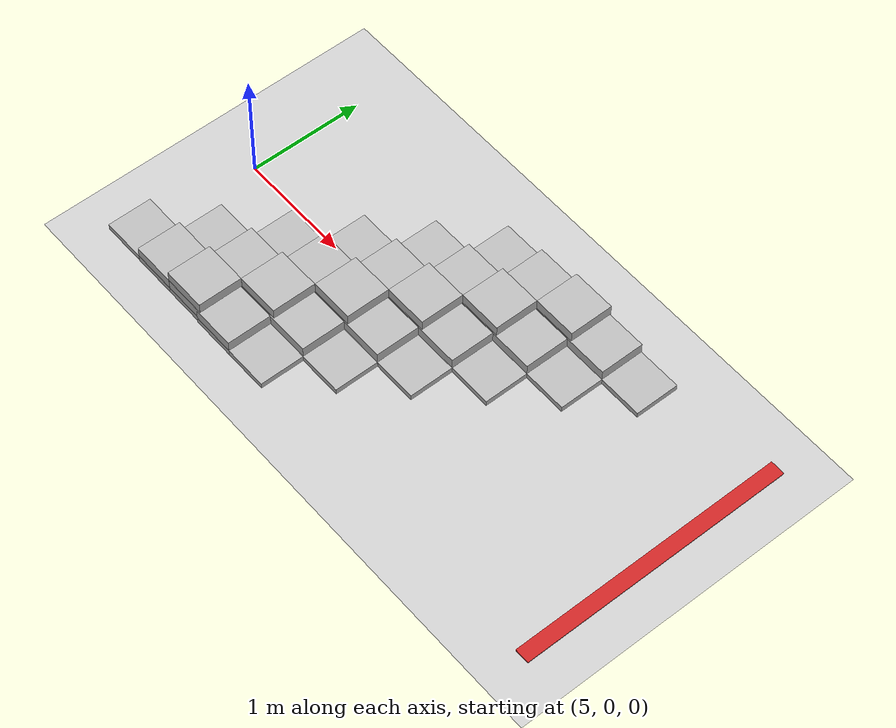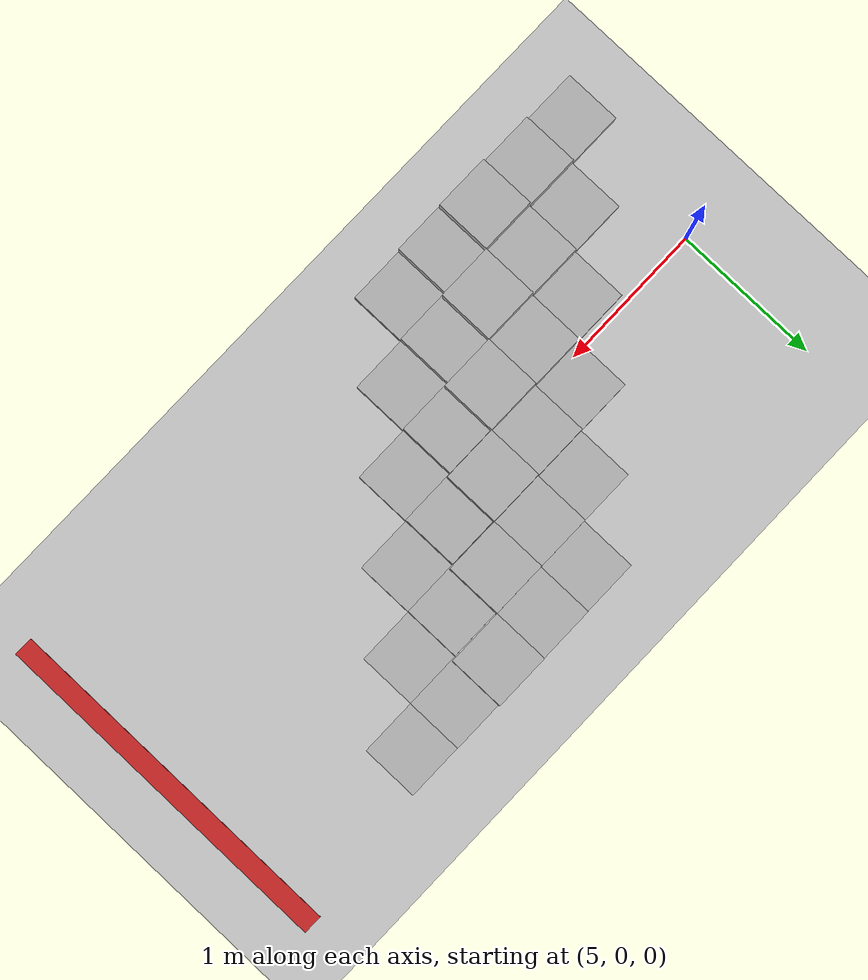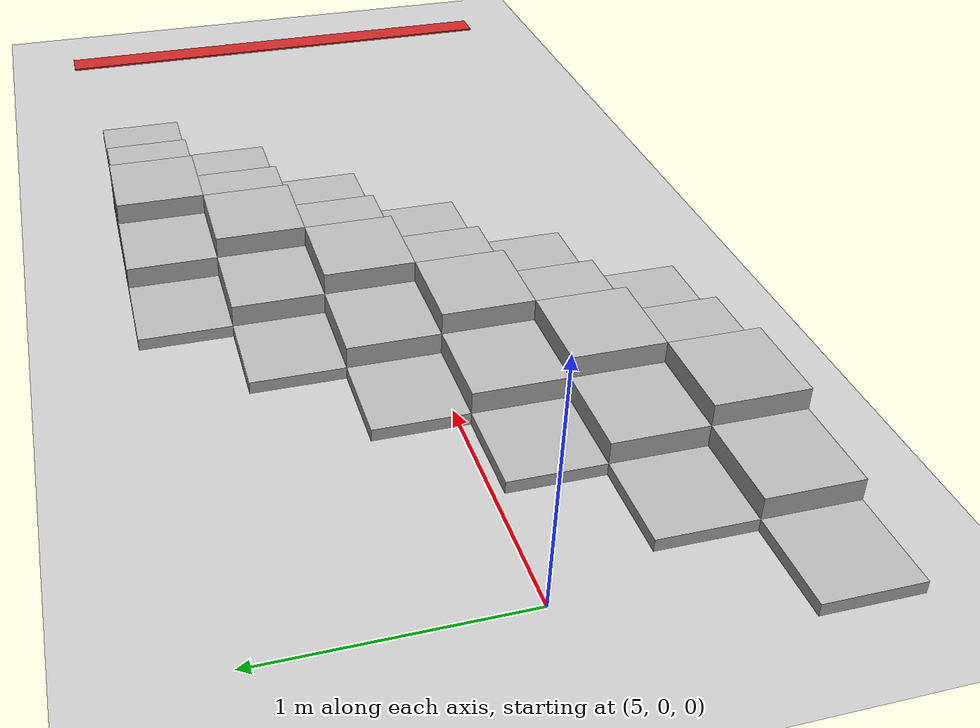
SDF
<sdf version="1.5">
 <world name="trials_task_2">
  <model name="ground_plane">
   <static>1</static>
   <link name="link">
    <collision name="collision">
     <geometry><plane><normal>0 0 1</normal><size>100 100</size></plane></geometry>
     <surface><friction><ode><mu>100</mu><mu2>50</mu2></ode></friction></surface>
    </collision>
    <visual name="visual">
     <cast_shadows>0</cast_shadows>
     <geometry><plane><normal>0 0 1</normal><size>100 100</size></plane></geometry>
     <material>
      <script><uri>file://media/materials/scripts/gazebo.material</uri><name>Gazebo/Grey</name></script>
     </material>
    </visual>
    <velocity_decay><linear>0</linear><angular>0</angular></velocity_decay>
   </link>
  </model>
  <model name="level_block_3">
   <pose>4.9471 -1.012 0 0 -0 0</pose>
   <link name="block_0_0_0::link">
    <inertial>
     <pose>0 0 0.0714375 0 -0 0</pose>
     <mass>5</mass>
     <inertia>
      <ixx>0.0681466</ixx>
      <ixy>0</ixy>
      <iyy>0.0681466</iyy>
      <ixz>0</ixz>
      <iyz>0</iyz>
      <izz>0.124808</izz>
     </inertia>
    </inertial>
    <visual name="visual"><geometry><box><size>0.387354 0.387354 0.092075</size></box></geometry></visual>
    <collision name="block_collision">
     <geometry><box><size>0.387354 0.387354 0.092075</size></box></geometry>
     <surface>
      <contact><ode><max_vel>0.1</max_vel><min_depth>0.001</min_depth></ode></contact>
      <friction><ode><mu>1</mu><mu2>1</mu2></ode></friction>
     </surface>
    </collision>
    <velocity_decay><linear>0</linear><angular>0</angular></velocity_decay>
    <pose>0 0 0 0 -0 1.5708</pose>
   </link>
   <link name="block_0_1_1::link">
    <inertial>
     <pose>0 0 0.0714375 0 -0 0</pose>
     <mass>5</mass>
     <inertia>
      <ixx>0.0681466</ixx>
      <ixy>0</ixy>
      <iyy>0.0681466</iyy>
      <ixz>0</ixz>
      <iyz>0</iyz>
      <izz>0.124808</izz>
     </inertia>
    </inertial>
    <visual name="visual"><geometry><box><size>0.387354 0.387354 0.092075</size></box></geometry></visual>
    <collision name="block_collision">
     <geometry><box><size>0.387354 0.387354 0.092075</size></box></geometry>
     <surface>
      <contact><ode><max_vel>0.1</max_vel><min_depth>0.001</min_depth></ode></contact>
      <friction><ode><mu>1</mu><mu2>1</mu2></ode></friction>
     </surface>
    </collision>
    <velocity_decay><linear>0</linear><angular>0</angular></velocity_decay>
    <pose>0.387354 0 0.093 0 -0 1.5708</pose>
   </link>
   <link name="block_0_1_0::link">
    <inertial>
     <pose>0 0 0.0714375 0 -0 0</pose>
     <mass>5</mass>
     <inertia>
      <ixx>0.0681466</ixx>
      <ixy>0</ixy>
      <iyy>0.0681466</iyy>
      <ixz>0</ixz>
      <iyz>0</iyz>
      <izz>0.124808</izz>
     </inertia>
    </inertial>
    <visual name="visual"><geometry><box><size>0.387354 0.387354 0.092075</size></box></geometry></visual>
    <collision name="block_collision">
     <geometry><box><size>0.387354 0.387354 0.092075</size></box></geometry>
     <surface>
      <contact><ode><max_vel>0.1</max_vel><min_depth>0.001</min_depth></ode></contact>
      <friction><ode><mu>1</mu><mu2>1</mu2></ode></friction>
     </surface>
    </collision>
    <velocity_decay><linear>0</linear><angular>0</angular></velocity_decay>
    <pose>0.387354 0 0 0 -0 1.5708</pose>
   </link>
   <link name="block_0_2_2::link">
    <inertial>
     <pose>0 0 0.0714375 0 -0 0</pose>
     <mass>5</mass>
     <inertia>
      <ixx>0.0681466</ixx>
      <ixy>0</ixy>
      <iyy>0.0681466</iyy>
      <ixz>0</ixz>
      <iyz>0</iyz>
      <izz>0.124808</izz>
     </inertia>
    </inertial>
    <visual name="visual"><geometry><box><size>0.387354 0.387354 0.092075</size></box></geometry></visual>
    <collision name="block_collision">
     <geometry><box><size>0.387354 0.387354 0.092075</size></box></geometry>
     <surface>
      <contact><ode><max_vel>0.1</max_vel><min_depth>0.001</min_depth></ode></contact>
      <friction><ode><mu>1</mu><mu2>1</mu2></ode></friction>
     </surface>
    </collision>
    <velocity_decay><linear>0</linear><angular>0</angular></velocity_decay>
    <pose>0.774707 0 0.186 0 -0 1.5708</pose>
   </link>
   <link name="block_0_2_1::link">
    <inertial>
     <pose>0 0 0.0714375 0 -0 0</pose>
     <mass>5</mass>
     <inertia>
      <ixx>0.0681466</ixx>
      <ixy>0</ixy>
      <iyy>0.0681466</iyy>
      <ixz>0</ixz>
      <iyz>0</iyz>
      <izz>0.124808</izz>
     </inertia>
    </inertial>
    <visual name="visual"><geometry><box><size>0.387354 0.387354 0.092075</size></box></geometry></visual>
    <collision name="block_collision">
     <geometry><box><size>0.387354 0.387354 0.092075</size></box></geometry>
     <surface>
      <contact><ode><max_vel>0.1</max_vel><min_depth>0.001</min_depth></ode></contact>
      <friction><ode><mu>1</mu><mu2>1</mu2></ode></friction>
     </surface>
    </collision>
    <velocity_decay><linear>0</linear><angular>0</angular></velocity_decay>
    <pose>0.774707 0 0.093 0 -0 1.5708</pose>
   </link>
   <link name="block_0_2_0::link">
    <inertial>
     <pose>0 0 0.0714375 0 -0 0</pose>
     <mass>5</mass>
     <inertia>
      <ixx>0.0681466</ixx>
      <ixy>0</ixy>
      <iyy>0.0681466</iyy>
      <ixz>0</ixz>
      <iyz>0</iyz>
      <izz>0.124808</izz>
     </inertia>
    </inertial>
    <visual name="visual"><geometry><box><size>0.387354 0.387354 0.092075</size></box></geometry></visual>
    <collision name="block_collision">
     <geometry><box><size>0.387354 0.387354 0.092075</size></box></geometry>
     <surface>
      <contact><ode><max_vel>0.1</max_vel><min_depth>0.001</min_depth></ode></contact>
      <friction><ode><mu>1</mu><mu2>1</mu2></ode></friction>
     </surface>
    </collision>
    <velocity_decay><linear>0</linear><angular>0</angular></velocity_decay>
    <pose>0.774707 0 0 0 -0 1.5708</pose>
   </link>
   <link name="block_1_0_0::link">
    <inertial>
     <pose>0 0 0.0714375 0 -0 0</pose>
     <mass>5</mass>
     <inertia>
      <ixx>0.0681466</ixx>
      <ixy>0</ixy>
      <iyy>0.0681466</iyy>
      <ixz>0</ixz>
      <iyz>0</iyz>
      <izz>0.124808</izz>
     </inertia>
    </inertial>
    <visual name="visual"><geometry><box><size>0.387354 0.387354 0.092075</size></box></geometry></visual>
    <collision name="block_collision">
     <geometry><box><size>0.387354 0.387354 0.092075</size></box></geometry>
     <surface>
      <contact><ode><max_vel>0.1</max_vel><min_depth>0.001</min_depth></ode></contact>
      <friction><ode><mu>1</mu><mu2>1</mu2></ode></friction>
     </surface>
    </collision>
    <velocity_decay><linear>0</linear><angular>0</angular></velocity_decay>
    <pose>0.387354 0.387354 0 0 -0 1.5708</pose>
   </link>
   <link name="block_1_1_1::link">
    <inertial>
     <pose>0 0 0.0714375 0 -0 0</pose>
     <mass>5</mass>
     <inertia>
      <ixx>0.0681466</ixx>
      <ixy>0</ixy>
      <iyy>0.0681466</iyy>
      <ixz>0</ixz>
      <iyz>0</iyz>
      <izz>0.124808</izz>
     </inertia>
    </inertial>
    <visual name="visual"><geometry><box><size>0.387354 0.387354 0.092075</size></box></geometry></visual>
    <collision name="block_collision">
     <geometry><box><size>0.387354 0.387354 0.092075</size></box></geometry>
     <surface>
      <contact><ode><max_vel>0.1</max_vel><min_depth>0.001</min_depth></ode></contact>
      <friction><ode><mu>1</mu><mu2>1</mu2></ode></friction>
     </surface>
    </collision>
    <velocity_decay><linear>0</linear><angular>0</angular></velocity_decay>
    <pose>0.774707 0.387354 0.093 0 -0 1.5708</pose>
   </link>
   <link name="block_1_1_0::link">
    <inertial>
     <pose>0 0 0.0714375 0 -0 0</pose>
     <mass>5</mass>
     <inertia>
      <ixx>0.0681466</ixx>
      <ixy>0</ixy>
      <iyy>0.0681466</iyy>
      <ixz>0</ixz>
      <iyz>0</iyz>
      <izz>0.124808</izz>
     </inertia>
    </inertial>
    <visual name="visual"><geometry><box><size>0.387354 0.387354 0.092075</size></box></geometry></visual>
    <collision name="block_collision">
     <geometry><box><size>0.387354 0.387354 0.092075</size></box></geometry>
     <surface>
      <contact><ode><max_vel>0.1</max_vel><min_depth>0.001</min_depth></ode></contact>
      <friction><ode><mu>1</mu><mu2>1</mu2></ode></friction>
     </surface>
    </collision>
    <velocity_decay><linear>0</linear><angular>0</angular></velocity_decay>
    <pose>0.774707 0.387354 0 0 -0 1.5708</pose>
   </link>
   <link name="block_1_2_2::link">
    <inertial>
     <pose>0 0 0.0714375 0 -0 0</pose>
     <mass>5</mass>
     <inertia>
      <ixx>0.0681466</ixx>
      <ixy>0</ixy>
      <iyy>0.0681466</iyy>
      <ixz>0</ixz>
      <iyz>0</iyz>
      <izz>0.124808</izz>
     </inertia>
    </inertial>
    <visual name="visual"><geometry><box><size>0.387354 0.387354 0.092075</size></box></geometry></visual>
    <collision name="block_collision">
     <geometry><box><size>0.387354 0.387354 0.092075</size></box></geometry>
     <surface>
      <contact><ode><max_vel>0.1</max_vel><min_depth>0.001</min_depth></ode></contact>
      <friction><ode><mu>1</mu><mu2>1</mu2></ode></friction>
     </surface>
    </collision>
    <velocity_decay><linear>0</linear><angular>0</angular></velocity_decay>
    <pose>1.16206 0.387354 0.186 0 -0 1.5708</pose>
   </link>
   <link name="block_1_2_1::link">
    <inertial>
     <pose>0 0 0.0714375 0 -0 0</pose>
     <mass>5</mass>
     <inertia>
      <ixx>0.0681466</ixx>
      <ixy>0</ixy>
      <iyy>0.0681466</iyy>
      <ixz>0</ixz>
      <iyz>0</iyz>
      <izz>0.124808</izz>
     </inertia>
    </inertial>
    <visual name="visual"><geometry><box><size>0.387354 0.387354 0.092075</size></box></geometry></visual>
    <collision name="block_collision">
     <geometry><box><size>0.387354 0.387354 0.092075</size></box></geometry>
     <surface>
      <contact><ode><max_vel>0.1</max_vel><min_depth>0.001</min_depth></ode></contact>
      <friction><ode><mu>1</mu><mu2>1</mu2></ode></friction>
     </surface>
    </collision>
    <velocity_decay><linear>0</linear><angular>0</angular></velocity_decay>
    <pose>1.16206 0.387354 0.093 0 -0 1.5708</pose>
   </link>
   <link name="block_1_2_0::link">
    <inertial>
     <pose>0 0 0.0714375 0 -0 0</pose>
     <mass>5</mass>
     <inertia>
      <ixx>0.0681466</ixx>
      <ixy>0</ixy>
      <iyy>0.0681466</iyy>
      <ixz>0</ixz>
      <iyz>0</iyz>
      <izz>0.124808</izz>
     </inertia>
    </inertial>
    <visual name="visual"><geometry><box><size>0.387354 0.387354 0.092075</size></box></geometry></visual>
    <collision name="block_collision">
     <geometry><box><size>0.387354 0.387354 0.092075</size></box></geometry>
     <surface>
      <contact><ode><max_vel>0.1</max_vel><min_depth>0.001</min_depth></ode></contact>
      <friction><ode><mu>1</mu><mu2>1</mu2></ode></friction>
     </surface>
    </collision>
    <velocity_decay><linear>0</linear><angular>0</angular></velocity_decay>
    <pose>1.16206 0.387354 0 0 -0 1.5708</pose>
   </link>
   <link name="block_2_0_0::link">
    <inertial>
     <pose>0 0 0.0714375 0 -0 0</pose>
     <mass>5</mass>
     <inertia>
      <ixx>0.0681466</ixx>
      <ixy>0</ixy>
      <iyy>0.0681466</iyy>
      <ixz>0</ixz>
      <iyz>0</iyz>
      <izz>0.124808</izz>
     </inertia>
    </inertial>
    <visual name="visual"><geometry><box><size>0.387354 0.387354 0.092075</size></box></geometry></visual>
    <collision name="block_collision">
     <geometry><box><size>0.387354 0.387354 0.092075</size></box></geometry>
     <surface>
      <contact><ode><max_vel>0.1</max_vel><min_depth>0.001</min_depth></ode></contact>
      <friction><ode><mu>1</mu><mu2>1</mu2></ode></friction>
     </surface>
    </collision>
    <velocity_decay><linear>0</linear><angular>0</angular></velocity_decay>
    <pose>0.774707 0.774707 0 0 -0 1.5708</pose>
   </link>
   <link name="block_2_1_1::link">
    <inertial>
     <pose>0 0 0.0714375 0 -0 0</pose>
     <mass>5</mass>
     <inertia>
      <ixx>0.0681466</ixx>
      <ixy>0</ixy>
      <iyy>0.0681466</iyy>
      <ixz>0</ixz>
      <iyz>0</iyz>
      <izz>0.124808</izz>
     </inertia>
    </inertial>
    <visual name="visual"><geometry><box><size>0.387354 0.387354 0.092075</size></box></geometry></visual>
    <collision name="block_collision">
     <geometry><box><size>0.387354 0.387354 0.092075</size></box></geometry>
     <surface>
      <contact><ode><max_vel>0.1</max_vel><min_depth>0.001</min_depth></ode></contact>
      <friction><ode><mu>1</mu><mu2>1</mu2></ode></friction>
     </surface>
    </collision>
    <velocity_decay><linear>0</linear><angular>0</angular></velocity_decay>
    <pose>1.16206 0.774707 0.093 0 -0 1.5708</pose>
   </link>
   <link name="block_2_1_0::link">
    <inertial>
     <pose>0 0 0.0714375 0 -0 0</pose>
     <mass>5</mass>
     <inertia>
      <ixx>0.0681466</ixx>
      <ixy>0</ixy>
      <iyy>0.0681466</iyy>
      <ixz>0</ixz>
      <iyz>0</iyz>
      <izz>0.124808</izz>
     </inertia>
    </inertial>
    <visual name="visual"><geometry><box><size>0.387354 0.387354 0.092075</size></box></geometry></visual>
    <collision name="block_collision">
     <geometry><box><size>0.387354 0.387354 0.092075</size></box></geometry>
     <surface>
      <contact><ode><max_vel>0.1</max_vel><min_depth>0.001</min_depth></ode></contact>
      <friction><ode><mu>1</mu><mu2>1</mu2></ode></friction>
     </surface>
    </collision>
    <velocity_decay><linear>0</linear><angular>0</angular></velocity_decay>
    <pose>1.16206 0.774707 0 0 -0 1.5708</pose>
   </link>
   <link name="block_2_2_2::link">
    <inertial>
     <pose>0 0 0.0714375 0 -0 0</pose>
     <mass>5</mass>
     <inertia>
      <ixx>0.0681466</ixx>
      <ixy>0</ixy>
      <iyy>0.0681466</iyy>
      <ixz>0</ixz>
      <iyz>0</iyz>
      <izz>0.124808</izz>
     </inertia>
    </inertial>
    <visual name="visual"><geometry><box><size>0.387354 0.387354 0.092075</size></box></geometry></visual>
    <collision name="block_collision">
     <geometry><box><size>0.387354 0.387354 0.092075</size></box></geometry>
     <surface>
      <contact><ode><max_vel>0.1</max_vel><min_depth>0.001</min_depth></ode></contact>
      <friction><ode><mu>1</mu><mu2>1</mu2></ode></friction>
     </surface>
    </collision>
    <velocity_decay><linear>0</linear><angular>0</angular></velocity_decay>
    <pose>1.54941 0.774707 0.186 0 -0 1.5708</pose>
   </link>
   <link name="block_2_2_1::link">
    <inertial>
     <pose>0 0 0.0714375 0 -0 0</pose>
     <mass>5</mass>
     <inertia>
      <ixx>0.0681466</ixx>
      <ixy>0</ixy>
      <iyy>0.0681466</iyy>
      <ixz>0</ixz>
      <iyz>0</iyz>
      <izz>0.124808</izz>
     </inertia>
    </inertial>
    <visual name="visual"><geometry><box><size>0.387354 0.387354 0.092075</size></box></geometry></visual>
    <collision name="block_collision">
     <geometry><box><size>0.387354 0.387354 0.092075</size></box></geometry>
     <surface>
      <contact><ode><max_vel>0.1</max_vel><min_depth>0.001</min_depth></ode></contact>
      <friction><ode><mu>1</mu><mu2>1</mu2></ode></friction>
     </surface>
    </collision>
    <velocity_decay><linear>0</linear><angular>0</angular></velocity_decay>
    <pose>1.54941 0.774707 0.093 0 -0 1.5708</pose>
   </link>
   <link name="block_2_2_0::link">
    <inertial>
     <pose>0 0 0.0714375 0 -0 0</pose>
     <mass>5</mass>
     <inertia>
      <ixx>0.0681466</ixx>
      <ixy>0</ixy>
      <iyy>0.0681466</iyy>
      <ixz>0</ixz>
      <iyz>0</iyz>
      <izz>0.124808</izz>
     </inertia>
    </inertial>
    <visual name="visual"><geometry><box><size>0.387354 0.387354 0.092075</size></box></geometry></visual>
    <collision name="block_collision">
     <geometry><box><size>0.387354 0.387354 0.092075</size></box></geometry>
     <surface>
      <contact><ode><max_vel>0.1</max_vel><min_depth>0.001</min_depth></ode></contact>
      <friction><ode><mu>1</mu><mu2>1</mu2></ode></friction>
     </surface>
    </collision>
    <velocity_decay><linear>0</linear><angular>0</angular></velocity_decay>
    <pose>1.54941 0.774707 0 0 -0 1.5708</pose>
   </link>
   <link name="block_3_0_0::link">
    <inertial>
     <pose>0 0 0.0714375 0 -0 0</pose>
     <mass>5</mass>
     <inertia>
      <ixx>0.0681466</ixx>
      <ixy>0</ixy>
      <iyy>0.0681466</iyy>
      <ixz>0</ixz>
      <iyz>0</iyz>
      <izz>0.124808</izz>
     </inertia>
    </inertial>
    <visual name="visual"><geometry><box><size>0.387354 0.387354 0.092075</size></box></geometry></visual>
    <collision name="block_collision">
     <geometry><box><size>0.387354 0.387354 0.092075</size></box></geometry>
     <surface>
      <contact><ode><max_vel>0.1</max_vel><min_depth>0.001</min_depth></ode></contact>
      <friction><ode><mu>1</mu><mu2>1</mu2></ode></friction>
     </surface>
    </collision>
    <velocity_decay><linear>0</linear><angular>0</angular></velocity_decay>
    <pose>1.16206 1.16206 0 0 -0 1.5708</pose>
   </link>
   <link name="block_3_1_1::link">
    <inertial>
     <pose>0 0 0.0714375 0 -0 0</pose>
     <mass>5</mass>
     <inertia>
      <ixx>0.0681466</ixx>
      <ixy>0</ixy>
      <iyy>0.0681466</iyy>
      <ixz>0</ixz>
      <iyz>0</iyz>
      <izz>0.124808</izz>
     </inertia>
    </inertial>
    <visual name="visual"><geometry><box><size>0.387354 0.387354 0.092075</size></box></geometry></visual>
    <collision name="block_collision">
     <geometry><box><size>0.387354 0.387354 0.092075</size></box></geometry>
     <surface>
      <contact><ode><max_vel>0.1</max_vel><min_depth>0.001</min_depth></ode></contact>
      <friction><ode><mu>1</mu><mu2>1</mu2></ode></friction>
     </surface>
    </collision>
    <velocity_decay><linear>0</linear><angular>0</angular></velocity_decay>
    <pose>1.54941 1.16206 0.093 0 -0 1.5708</pose>
   </link>
   <link name="block_3_1_0::link">
    <inertial>
     <pose>0 0 0.0714375 0 -0 0</pose>
     <mass>5</mass>
     <inertia>
      <ixx>0.0681466</ixx>
      <ixy>0</ixy>
      <iyy>0.0681466</iyy>
      <ixz>0</ixz>
      <iyz>0</iyz>
      <izz>0.124808</izz>
     </inertia>
    </inertial>
    <visual name="visual"><geometry><box><size>0.387354 0.387354 0.092075</size></box></geometry></visual>
    <collision name="block_collision">
     <geometry><box><size>0.387354 0.387354 0.092075</size></box></geometry>
     <surface>
      <contact><ode><max_vel>0.1</max_vel><min_depth>0.001</min_depth></ode></contact>
      <friction><ode><mu>1</mu><mu2>1</mu2></ode></friction>
     </surface>
    </collision>
    <velocity_decay><linear>0</linear><angular>0</angular></velocity_decay>
    <pose>1.54941 1.16206 0 0 -0 1.5708</pose>
   </link>
   <link name="block_3_2_2::link">
    <inertial>
     <pose>0 0 0.0714375 0 -0 0</pose>
     <mass>5</mass>
     <inertia>
      <ixx>0.0681466</ixx>
      <ixy>0</ixy>
      <iyy>0.0681466</iyy>
      <ixz>0</ixz>
      <iyz>0</iyz>
      <izz>0.124808</izz>
     </inertia>
    </inertial>
    <visual name="visual"><geometry><box><size>0.387354 0.387354 0.092075</size></box></geometry></visual>
    <collision name="block_collision">
     <geometry><box><size>0.387354 0.387354 0.092075</size></box></geometry>
     <surface>
      <contact><ode><max_vel>0.1</max_vel><min_depth>0.001</min_depth></ode></contact>
      <friction><ode><mu>1</mu><mu2>1</mu2></ode></friction>
     </surface>
    </collision>
    <velocity_decay><linear>0</linear><angular>0</angular></velocity_decay>
    <pose>1.93677 1.16206 0.186 0 -0 1.5708</pose>
   </link>
   <link name="block_3_2_1::link">
    <inertial>
     <pose>0 0 0.0714375 0 -0 0</pose>
     <mass>5</mass>
     <inertia>
      <ixx>0.0681466</ixx>
      <ixy>0</ixy>
      <iyy>0.0681466</iyy>
      <ixz>0</ixz>
      <iyz>0</iyz>
      <izz>0.124808</izz>
     </inertia>
    </inertial>
    <visual name="visual"><geometry><box><size>0.387354 0.387354 0.092075</size></box></geometry></visual>
    <collision name="block_collision">
     <geometry><box><size>0.387354 0.387354 0.092075</size></box></geometry>
     <surface>
      <contact><ode><max_vel>0.1</max_vel><min_depth>0.001</min_depth></ode></contact>
      <friction><ode><mu>1</mu><mu2>1</mu2></ode></friction>
     </surface>
    </collision>
    <velocity_decay><linear>0</linear><angular>0</angular></velocity_decay>
    <pose>1.93677 1.16206 0.093 0 -0 1.5708</pose>
   </link>
   <link name="block_3_2_0::link">
    <inertial>
     <pose>0 0 0.0714375 0 -0 0</pose>
     <mass>5</mass>
     <inertia>
      <ixx>0.0681466</ixx>
      <ixy>0</ixy>
      <iyy>0.0681466</iyy>
      <ixz>0</ixz>
      <iyz>0</iyz>
      <izz>0.124808</izz>
     </inertia>
    </inertial>
    <visual name="visual"><geometry><box><size>0.387354 0.387354 0.092075</size></box></geometry></visual>
    <collision name="block_collision">
     <geometry><box><size>0.387354 0.387354 0.092075</size></box></geometry>
     <surface>
      <contact><ode><max_vel>0.1</max_vel><min_depth>0.001</min_depth></ode></contact>
      <friction><ode><mu>1</mu><mu2>1</mu2></ode></friction>
     </surface>
    </collision>
    <velocity_decay><linear>0</linear><angular>0</angular></velocity_decay>
    <pose>1.93677 1.16206 0 0 -0 1.5708</pose>
   </link>
   <link name="block_4_0_0::link">
    <inertial>
     <pose>0 0 0.0714375 0 -0 0</pose>
     <mass>5</mass>
     <inertia>
      <ixx>0.0681466</ixx>
      <ixy>0</ixy>
      <iyy>0.0681466</iyy>
      <ixz>0</ixz>
      <iyz>0</iyz>
      <izz>0.124808</izz>
     </inertia>
    </inertial>
    <visual name="visual"><geometry><box><size>0.387354 0.387354 0.092075</size></box></geometry></visual>
    <collision name="block_collision">
     <geometry><box><size>0.387354 0.387354 0.092075</size></box></geometry>
     <surface>
      <contact><ode><max_vel>0.1</max_vel><min_depth>0.001</min_depth></ode></contact>
      <friction><ode><mu>1</mu><mu2>1</mu2></ode></friction>
     </surface>
    </collision>
    <velocity_decay><linear>0</linear><angular>0</angular></velocity_decay>
    <pose>1.54941 1.54941 0 0 -0 1.5708</pose>
   </link>
   <link name="block_4_1_1::link">
    <inertial>
     <pose>0 0 0.0714375 0 -0 0</pose>
     <mass>5</mass>
     <inertia>
      <ixx>0.0681466</ixx>
      <ixy>0</ixy>
      <iyy>0.0681466</iyy>
      <ixz>0</ixz>
      <iyz>0</iyz>
      <izz>0.124808</izz>
     </inertia>
    </inertial>
    <visual name="visual"><geometry><box><size>0.387354 0.387354 0.092075</size></box></geometry></visual>
    <collision name="block_collision">
     <geometry><box><size>0.387354 0.387354 0.092075</size></box></geometry>
     <surface>
      <contact><ode><max_vel>0.1</max_vel><min_depth>0.001</min_depth></ode></contact>
      <friction><ode><mu>1</mu><mu2>1</mu2></ode></friction>
     </surface>
    </collision>
    <velocity_decay><linear>0</linear><angular>0</angular></velocity_decay>
    <pose>1.93677 1.54941 0.093 0 -0 1.5708</pose>
   </link>
   <link name="block_4_1_0::link">
    <inertial>
     <pose>0 0 0.0714375 0 -0 0</pose>
     <mass>5</mass>
     <inertia>
      <ixx>0.0681466</ixx>
      <ixy>0</ixy>
      <iyy>0.0681466</iyy>
      <ixz>0</ixz>
      <iyz>0</iyz>
      <izz>0.124808</izz>
     </inertia>
    </inertial>
    <visual name="visual"><geometry><box><size>0.387354 0.387354 0.092075</size></box></geometry></visual>
    <collision name="block_collision">
     <geometry><box><size>0.387354 0.387354 0.092075</size></box></geometry>
     <surface>
      <contact><ode><max_vel>0.1</max_vel><min_depth>0.001</min_depth></ode></contact>
      <friction><ode><mu>1</mu><mu2>1</mu2></ode></friction>
     </surface>
    </collision>
    <velocity_decay><linear>0</linear><angular>0</angular></velocity_decay>
    <pose>1.93677 1.54941 0 0 -0 1.5708</pose>
   </link>
   <link name="block_4_2_2::link">
    <inertial>
     <pose>0 0 0.0714375 0 -0 0</pose>
     <mass>5</mass>
     <inertia>
      <ixx>0.0681466</ixx>
      <ixy>0</ixy>
      <iyy>0.0681466</iyy>
      <ixz>0</ixz>
      <iyz>0</iyz>
      <izz>0.124808</izz>
     </inertia>
    </inertial>
    <visual name="visual"><geometry><box><size>0.387354 0.387354 0.092075</size></box></geometry></visual>
    <collision name="block_collision">
     <geometry><box><size>0.387354 0.387354 0.092075</size></box></geometry>
     <surface>
      <contact><ode><max_vel>0.1</max_vel><min_depth>0.001</min_depth></ode></contact>
      <friction><ode><mu>1</mu><mu2>1</mu2></ode></friction>
     </surface>
    </collision>
    <velocity_decay><linear>0</linear><angular>0</angular></velocity_decay>
    <pose>2.32412 1.54941 0.186 0 -0 1.5708</pose>
   </link>
   <link name="block_4_2_1::link">
    <inertial>
     <pose>0 0 0.0714375 0 -0 0</pose>
     <mass>5</mass>
     <inertia>
      <ixx>0.0681466</ixx>
      <ixy>0</ixy>
      <iyy>0.0681466</iyy>
      <ixz>0</ixz>
      <iyz>0</iyz>
      <izz>0.124808</izz>
     </inertia>
    </inertial>
    <visual name="visual"><geometry><box><size>0.387354 0.387354 0.092075</size></box></geometry></visual>
    <collision name="block_collision">
     <geometry><box><size>0.387354 0.387354 0.092075</size></box></geometry>
     <surface>
      <contact><ode><max_vel>0.1</max_vel><min_depth>0.001</min_depth></ode></contact>
      <friction><ode><mu>1</mu><mu2>1</mu2></ode></friction>
     </surface>
    </collision>
    <velocity_decay><linear>0</linear><angular>0</angular></velocity_decay>
    <pose>2.32412 1.54941 0.093 0 -0 1.5708</pose>
   </link>
   <link name="block_4_2_0::link">
    <inertial>
     <pose>0 0 0.0714375 0 -0 0</pose>
     <mass>5</mass>
     <inertia>
      <ixx>0.0681466</ixx>
      <ixy>0</ixy>
      <iyy>0.0681466</iyy>
      <ixz>0</ixz>
      <iyz>0</iyz>
      <izz>0.124808</izz>
     </inertia>
    </inertial>
    <visual name="visual"><geometry><box><size>0.387354 0.387354 0.092075</size></box></geometry></visual>
    <collision name="block_collision">
     <geometry><box><size>0.387354 0.387354 0.092075</size></box></geometry>
     <surface>
      <contact><ode><max_vel>0.1</max_vel><min_depth>0.001</min_depth></ode></contact>
      <friction><ode><mu>1</mu><mu2>1</mu2></ode></friction>
     </surface>
    </collision>
    <velocity_decay><linear>0</linear><angular>0</angular></velocity_decay>
    <pose>2.32412 1.54941 0 0 -0 1.5708</pose>
   </link>
   <link name="block_5_0_0::link">
    <inertial>
     <pose>0 0 0.0714375 0 -0 0</pose>
     <mass>5</mass>
     <inertia>
      <ixx>0.0681466</ixx>
      <ixy>0</ixy>
      <iyy>0.0681466</iyy>
      <ixz>0</ixz>
      <iyz>0</iyz>
      <izz>0.124808</izz>
     </inertia>
    </inertial>
    <visual name="visual"><geometry><box><size>0.387354 0.387354 0.092075</size></box></geometry></visual>
    <collision name="block_collision">
     <geometry><box><size>0.387354 0.387354 0.092075</size></box></geometry>
     <surface>
      <contact><ode><max_vel>0.1</max_vel><min_depth>0.001</min_depth></ode></contact>
      <friction><ode><mu>1</mu><mu2>1</mu2></ode></friction>
     </surface>
    </collision>
    <velocity_decay><linear>0</linear><angular>0</angular></velocity_decay>
    <pose>1.93677 1.93677 0 0 -0 1.5708</pose>
   </link>
   <link name="block_5_1_1::link">
    <inertial>
     <pose>0 0 0.0714375 0 -0 0</pose>
     <mass>5</mass>
     <inertia>
      <ixx>0.0681466</ixx>
      <ixy>0</ixy>
      <iyy>0.0681466</iyy>
      <ixz>0</ixz>
      <iyz>0</iyz>
      <izz>0.124808</izz>
     </inertia>
    </inertial>
    <visual name="visual"><geometry><box><size>0.387354 0.387354 0.092075</size></box></geometry></visual>
    <collision name="block_collision">
     <geometry><box><size>0.387354 0.387354 0.092075</size></box></geometry>
     <surface>
      <contact><ode><max_vel>0.1</max_vel><min_depth>0.001</min_depth></ode></contact>
      <friction><ode><mu>1</mu><mu2>1</mu2></ode></friction>
     </surface>
    </collision>
    <velocity_decay><linear>0</linear><angular>0</angular></velocity_decay>
    <pose>2.32412 1.93677 0.093 0 -0 1.5708</pose>
   </link>
   <link name="block_5_1_0::link">
    <inertial>
     <pose>0 0 0.0714375 0 -0 0</pose>
     <mass>5</mass>
     <inertia>
      <ixx>0.0681466</ixx>
      <ixy>0</ixy>
      <iyy>0.0681466</iyy>
      <ixz>0</ixz>
      <iyz>0</iyz>
      <izz>0.124808</izz>
     </inertia>
    </inertial>
    <visual name="visual"><geometry><box><size>0.387354 0.387354 0.092075</size></box></geometry></visual>
    <collision name="block_collision">
     <geometry><box><size>0.387354 0.387354 0.092075</size></box></geometry>
     <surface>
      <contact><ode><max_vel>0.1</max_vel><min_depth>0.001</min_depth></ode></contact>
      <friction><ode><mu>1</mu><mu2>1</mu2></ode></friction>
     </surface>
    </collision>
    <velocity_decay><linear>0</linear><angular>0</angular></velocity_decay>
    <pose>2.32412 1.93677 0 0 -0 1.5708</pose>
   </link>
   <link name="block_5_2_2::link">
    <inertial>
     <pose>0 0 0.0714375 0 -0 0</pose>
     <mass>5</mass>
     <inertia>
      <ixx>0.0681466</ixx>
      <ixy>0</ixy>
      <iyy>0.0681466</iyy>
      <ixz>0</ixz>
      <iyz>0</iyz>
      <izz>0.124808</izz>
     </inertia>
    </inertial>
    <visual name="visual"><geometry><box><size>0.387354 0.387354 0.092075</size></box></geometry></visual>
    <collision name="block_collision">
     <geometry><box><size>0.387354 0.387354 0.092075</size></box></geometry>
     <surface>
      <contact><ode><max_vel>0.1</max_vel><min_depth>0.001</min_depth></ode></contact>
      <friction><ode><mu>1</mu><mu2>1</mu2></ode></friction>
     </surface>
    </collision>
    <velocity_decay><linear>0</linear><angular>0</angular></velocity_decay>
    <pose>2.71147 1.93677 0.186 0 -0 1.5708</pose>
   </link>
   <link name="block_5_2_1::link">
    <inertial>
     <pose>0 0 0.0714375 0 -0 0</pose>
     <mass>5</mass>
     <inertia>
      <ixx>0.0681466</ixx>
      <ixy>0</ixy>
      <iyy>0.0681466</iyy>
      <ixz>0</ixz>
      <iyz>0</iyz>
      <izz>0.124808</izz>
     </inertia>
    </inertial>
    <visual name="visual"><geometry><box><size>0.387354 0.387354 0.092075</size></box></geometry></visual>
    <collision name="block_collision">
     <geometry><box><size>0.387354 0.387354 0.092075</size></box></geometry>
     <surface>
      <contact><ode><max_vel>0.1</max_vel><min_depth>0.001</min_depth></ode></contact>
      <friction><ode><mu>1</mu><mu2>1</mu2></ode></friction>
     </surface>
    </collision>
    <velocity_decay><linear>0</linear><angular>0</angular></velocity_decay>
    <pose>2.71147 1.93677 0.093 0 -0 1.5708</pose>
   </link>
   <link name="block_5_2_0::link">
    <inertial>
     <pose>0 0 0.0714375 0 -0 0</pose>
     <mass>5</mass>
     <inertia>
      <ixx>0.0681466</ixx>
      <ixy>0</ixy>
      <iyy>0.0681466</iyy>
      <ixz>0</ixz>
      <iyz>0</iyz>
      <izz>0.124808</izz>
     </inertia>
    </inertial>
    <visual name="visual"><geometry><box><size>0.387354 0.387354 0.092075</size></box></geometry></visual>
    <collision name="block_collision">
     <geometry><box><size>0.387354 0.387354 0.092075</size></box></geometry>
     <surface>
      <contact><ode><max_vel>0.1</max_vel><min_depth>0.001</min_depth></ode></contact>
      <friction><ode><mu>1</mu><mu2>1</mu2></ode></friction>
     </surface>
    </collision>
    <velocity_decay><linear>0</linear><angular>0</angular></velocity_decay>
    <pose>2.71147 1.93677 0 0 -0 1.5708</pose>
   </link>
   <static>1</static>
  </model>
  <model name="level_block_4">
   <pose>8.399 0.917 0 0 -0 3.14159</pose>
   <link name="block_0_0_0::link">
    <inertial>
     <pose>0 0 0.0714375 0 -0 0</pose>
     <mass>5</mass>
     <inertia>
      <ixx>0.0681466</ixx>
      <ixy>0</ixy>
      <iyy>0.0681466</iyy>
      <ixz>0</ixz>
      <iyz>0</iyz>
      <izz>0.124808</izz>
     </inertia>
    </inertial>
    <visual name="visual"><geometry><box><size>0.387354 0.387354 0.092075</size></box></geometry></visual>
    <collision name="block_collision">
     <geometry><box><size>0.387354 0.387354 0.092075</size></box></geometry>
     <surface>
      <contact><ode><max_vel>0.1</max_vel><min_depth>0.001</min_depth></ode></contact>
      <friction><ode><mu>1</mu><mu2>1</mu2></ode></friction>
     </surface>
    </collision>
    <velocity_decay><linear>0</linear><angular>0</angular></velocity_decay>
    <pose>0 0 0 0 -0 1.5708</pose>
   </link>
   <link name="block_0_1_1::link">
    <inertial>
     <pose>0 0 0.0714375 0 -0 0</pose>
     <mass>5</mass>
     <inertia>
      <ixx>0.0681466</ixx>
      <ixy>0</ixy>
      <iyy>0.0681466</iyy>
      <ixz>0</ixz>
      <iyz>0</iyz>
      <izz>0.124808</izz>
     </inertia>
    </inertial>
    <visual name="visual"><geometry><box><size>0.387354 0.387354 0.092075</size></box></geometry></visual>
    <collision name="block_collision">
     <geometry><box><size>0.387354 0.387354 0.092075</size></box></geometry>
     <surface>
      <contact><ode><max_vel>0.1</max_vel><min_depth>0.001</min_depth></ode></contact>
      <friction><ode><mu>1</mu><mu2>1</mu2></ode></friction>
     </surface>
    </collision>
    <velocity_decay><linear>0</linear><angular>0</angular></velocity_decay>
    <pose>0.387354 0 0.093 0 -0 1.5708</pose>
   </link>
   <link name="block_0_1_0::link">
    <inertial>
     <pose>0 0 0.0714375 0 -0 0</pose>
     <mass>5</mass>
     <inertia>
      <ixx>0.0681466</ixx>
      <ixy>0</ixy>
      <iyy>0.0681466</iyy>
      <ixz>0</ixz>
      <iyz>0</iyz>
      <izz>0.124808</izz>
     </inertia>
    </inertial>
    <visual name="visual"><geometry><box><size>0.387354 0.387354 0.092075</size></box></geometry></visual>
    <collision name="block_collision">
     <geometry><box><size>0.387354 0.387354 0.092075</size></box></geometry>
     <surface>
      <contact><ode><max_vel>0.1</max_vel><min_depth>0.001</min_depth></ode></contact>
      <friction><ode><mu>1</mu><mu2>1</mu2></ode></friction>
     </surface>
    </collision>
    <velocity_decay><linear>0</linear><angular>0</angular></velocity_decay>
    <pose>0.387354 0 0 0 -0 1.5708</pose>
   </link>
   <link name="block_1_0_0::link">
    <inertial>
     <pose>0 0 0.0714375 0 -0 0</pose>
     <mass>5</mass>
     <inertia>
      <ixx>0.0681466</ixx>
      <ixy>0</ixy>
      <iyy>0.0681466</iyy>
      <ixz>0</ixz>
      <iyz>0</iyz>
      <izz>0.124808</izz>
     </inertia>
    </inertial>
    <visual name="visual"><geometry><box><size>0.387354 0.387354 0.092075</size></box></geometry></visual>
    <collision name="block_collision">
     <geometry><box><size>0.387354 0.387354 0.092075</size></box></geometry>
     <surface>
      <contact><ode><max_vel>0.1</max_vel><min_depth>0.001</min_depth></ode></contact>
      <friction><ode><mu>1</mu><mu2>1</mu2></ode></friction>
     </surface>
    </collision>
    <velocity_decay><linear>0</linear><angular>0</angular></velocity_decay>
    <pose>0.387354 0.387354 0 0 -0 1.5708</pose>
   </link>
   <link name="block_1_1_1::link">
    <inertial>
     <pose>0 0 0.0714375 0 -0 0</pose>
     <mass>5</mass>
     <inertia>
      <ixx>0.0681466</ixx>
      <ixy>0</ixy>
      <iyy>0.0681466</iyy>
      <ixz>0</ixz>
      <iyz>0</iyz>
      <izz>0.124808</izz>
     </inertia>
    </inertial>
    <visual name="visual"><geometry><box><size>0.387354 0.387354 0.092075</size></box></geometry></visual>
    <collision name="block_collision">
     <geometry><box><size>0.387354 0.387354 0.092075</size></box></geometry>
     <surface>
      <contact><ode><max_vel>0.1</max_vel><min_depth>0.001</min_depth></ode></contact>
      <friction><ode><mu>1</mu><mu2>1</mu2></ode></friction>
     </surface>
    </collision>
    <velocity_decay><linear>0</linear><angular>0</angular></velocity_decay>
    <pose>0.774707 0.387354 0.093 0 -0 1.5708</pose>
   </link>
   <link name="block_1_1_0::link">
    <inertial>
     <pose>0 0 0.0714375 0 -0 0</pose>
     <mass>5</mass>
     <inertia>
      <ixx>0.0681466</ixx>
      <ixy>0</ixy>
      <iyy>0.0681466</iyy>
      <ixz>0</ixz>
      <iyz>0</iyz>
      <izz>0.124808</izz>
     </inertia>
    </inertial>
    <visual name="visual"><geometry><box><size>0.387354 0.387354 0.092075</size></box></geometry></visual>
    <collision name="block_collision">
     <geometry><box><size>0.387354 0.387354 0.092075</size></box></geometry>
     <surface>
      <contact><ode><max_vel>0.1</max_vel><min_depth>0.001</min_depth></ode></contact>
      <friction><ode><mu>1</mu><mu2>1</mu2></ode></friction>
     </surface>
    </collision>
    <velocity_decay><linear>0</linear><angular>0</angular></velocity_decay>
    <pose>0.774707 0.387354 0 0 -0 1.5708</pose>
   </link>
   <link name="block_2_0_0::link">
    <inertial>
     <pose>0 0 0.0714375 0 -0 0</pose>
     <mass>5</mass>
     <inertia>
      <ixx>0.0681466</ixx>
      <ixy>0</ixy>
      <iyy>0.0681466</iyy>
      <ixz>0</ixz>
      <iyz>0</iyz>
      <izz>0.124808</izz>
     </inertia>
    </inertial>
    <visual name="visual"><geometry><box><size>0.387354 0.387354 0.092075</size></box></geometry></visual>
    <collision name="block_collision">
     <geometry><box><size>0.387354 0.387354 0.092075</size></box></geometry>
     <surface>
      <contact><ode><max_vel>0.1</max_vel><min_depth>0.001</min_depth></ode></contact>
      <friction><ode><mu>1</mu><mu2>1</mu2></ode></friction>
     </surface>
    </collision>
    <velocity_decay><linear>0</linear><angular>0</angular></velocity_decay>
    <pose>0.774707 0.774707 0 0 -0 1.5708</pose>
   </link>
   <link name="block_2_1_1::link">
    <inertial>
     <pose>0 0 0.0714375 0 -0 0</pose>
     <mass>5</mass>
     <inertia>
      <ixx>0.0681466</ixx>
      <ixy>0</ixy>
      <iyy>0.0681466</iyy>
      <ixz>0</ixz>
      <iyz>0</iyz>
      <izz>0.124808</izz>
     </inertia>
    </inertial>
    <visual name="visual"><geometry><box><size>0.387354 0.387354 0.092075</size></box></geometry></visual>
    <collision name="block_collision">
     <geometry><box><size>0.387354 0.387354 0.092075</size></box></geometry>
     <surface>
      <contact><ode><max_vel>0.1</max_vel><min_depth>0.001</min_depth></ode></contact>
      <friction><ode><mu>1</mu><mu2>1</mu2></ode></friction>
     </surface>
    </collision>
    <velocity_decay><linear>0</linear><angular>0</angular></velocity_decay>
    <pose>1.16206 0.774707 0.093 0 -0 1.5708</pose>
   </link>
   <link name="block_2_1_0::link">
    <inertial>
     <pose>0 0 0.0714375 0 -0 0</pose>
     <mass>5</mass>
     <inertia>
      <ixx>0.0681466</ixx>
      <ixy>0</ixy>
      <iyy>0.0681466</iyy>
      <ixz>0</ixz>
      <iyz>0</iyz>
      <izz>0.124808</izz>
     </inertia>
    </inertial>
    <visual name="visual"><geometry><box><size>0.387354 0.387354 0.092075</size></box></geometry></visual>
    <collision name="block_collision">
     <geometry><box><size>0.387354 0.387354 0.092075</size></box></geometry>
     <surface>
      <contact><ode><max_vel>0.1</max_vel><min_depth>0.001</min_depth></ode></contact>
      <friction><ode><mu>1</mu><mu2>1</mu2></ode></friction>
     </surface>
    </collision>
    <velocity_decay><linear>0</linear><angular>0</angular></velocity_decay>
    <pose>1.16206 0.774707 0 0 -0 1.5708</pose>
   </link>
   <link name="block_3_0_0::link">
    <inertial>
     <pose>0 0 0.0714375 0 -0 0</pose>
     <mass>5</mass>
     <inertia>
      <ixx>0.0681466</ixx>
      <ixy>0</ixy>
      <iyy>0.0681466</iyy>
      <ixz>0</ixz>
      <iyz>0</iyz>
      <izz>0.124808</izz>
     </inertia>
    </inertial>
    <visual name="visual"><geometry><box><size>0.387354 0.387354 0.092075</size></box></geometry></visual>
    <collision name="block_collision">
     <geometry><box><size>0.387354 0.387354 0.092075</size></box></geometry>
     <surface>
      <contact><ode><max_vel>0.1</max_vel><min_depth>0.001</min_depth></ode></contact>
      <friction><ode><mu>1</mu><mu2>1</mu2></ode></friction>
     </surface>
    </collision>
    <velocity_decay><linear>0</linear><angular>0</angular></velocity_decay>
    <pose>1.16206 1.16206 0 0 -0 1.5708</pose>
   </link>
   <link name="block_3_1_1::link">
    <inertial>
     <pose>0 0 0.0714375 0 -0 0</pose>
     <mass>5</mass>
     <inertia>
      <ixx>0.0681466</ixx>
      <ixy>0</ixy>
      <iyy>0.0681466</iyy>
      <ixz>0</ixz>
      <iyz>0</iyz>
      <izz>0.124808</izz>
     </inertia>
    </inertial>
    <visual name="visual"><geometry><box><size>0.387354 0.387354 0.092075</size></box></geometry></visual>
    <collision name="block_collision">
     <geometry><box><size>0.387354 0.387354 0.092075</size></box></geometry>
     <surface>
      <contact><ode><max_vel>0.1</max_vel><min_depth>0.001</min_depth></ode></contact>
      <friction><ode><mu>1</mu><mu2>1</mu2></ode></friction>
     </surface>
    </collision>
    <velocity_decay><linear>0</linear><angular>0</angular></velocity_decay>
    <pose>1.54941 1.16206 0.093 0 -0 1.5708</pose>
   </link>
   <link name="block_3_1_0::link">
    <inertial>
     <pose>0 0 0.0714375 0 -0 0</pose>
     <mass>5</mass>
     <inertia>
      <ixx>0.0681466</ixx>
      <ixy>0</ixy>
      <iyy>0.0681466</iyy>
      <ixz>0</ixz>
      <iyz>0</iyz>
      <izz>0.124808</izz>
     </inertia>
    </inertial>
    <visual name="visual"><geometry><box><size>0.387354 0.387354 0.092075</size></box></geometry></visual>
    <collision name="block_collision">
     <geometry><box><size>0.387354 0.387354 0.092075</size></box></geometry>
     <surface>
      <contact><ode><max_vel>0.1</max_vel><min_depth>0.001</min_depth></ode></contact>
      <friction><ode><mu>1</mu><mu2>1</mu2></ode></friction>
     </surface>
    </collision>
    <velocity_decay><linear>0</linear><angular>0</angular></velocity_decay>
    <pose>1.54941 1.16206 0 0 -0 1.5708</pose>
   </link>
   <link name="block_4_0_0::link">
    <inertial>
     <pose>0 0 0.0714375 0 -0 0</pose>
     <mass>5</mass>
     <inertia>
      <ixx>0.0681466</ixx>
      <ixy>0</ixy>
      <iyy>0.0681466</iyy>
      <ixz>0</ixz>
      <iyz>0</iyz>
      <izz>0.124808</izz>
     </inertia>
    </inertial>
    <visual name="visual"><geometry><box><size>0.387354 0.387354 0.092075</size></box></geometry></visual>
    <collision name="block_collision">
     <geometry><box><size>0.387354 0.387354 0.092075</size></box></geometry>
     <surface>
      <contact><ode><max_vel>0.1</max_vel><min_depth>0.001</min_depth></ode></contact>
      <friction><ode><mu>1</mu><mu2>1</mu2></ode></friction>
     </surface>
    </collision>
    <velocity_decay><linear>0</linear><angular>0</angular></velocity_decay>
    <pose>1.54941 1.54941 0 0 -0 1.5708</pose>
   </link>
   <link name="block_4_1_1::link">
    <inertial>
     <pose>0 0 0.0714375 0 -0 0</pose>
     <mass>5</mass>
     <inertia>
      <ixx>0.0681466</ixx>
      <ixy>0</ixy>
      <iyy>0.0681466</iyy>
      <ixz>0</ixz>
      <iyz>0</iyz>
      <izz>0.124808</izz>
     </inertia>
    </inertial>
    <visual name="visual"><geometry><box><size>0.387354 0.387354 0.092075</size></box></geometry></visual>
    <collision name="block_collision">
     <geometry><box><size>0.387354 0.387354 0.092075</size></box></geometry>
     <surface>
      <contact><ode><max_vel>0.1</max_vel><min_depth>0.001</min_depth></ode></contact>
      <friction><ode><mu>1</mu><mu2>1</mu2></ode></friction>
     </surface>
    </collision>
    <velocity_decay><linear>0</linear><angular>0</angular></velocity_decay>
    <pose>1.93677 1.54941 0.093 0 -0 1.5708</pose>
   </link>
   <link name="block_4_1_0::link">
    <inertial>
     <pose>0 0 0.0714375 0 -0 0</pose>
     <mass>5</mass>
     <inertia>
      <ixx>0.0681466</ixx>
      <ixy>0</ixy>
      <iyy>0.0681466</iyy>
      <ixz>0</ixz>
      <iyz>0</iyz>
      <izz>0.124808</izz>
     </inertia>
    </inertial>
    <visual name="visual"><geometry><box><size>0.387354 0.387354 0.092075</size></box></geometry></visual>
    <collision name="block_collision">
     <geometry><box><size>0.387354 0.387354 0.092075</size></box></geometry>
     <surface>
      <contact><ode><max_vel>0.1</max_vel><min_depth>0.001</min_depth></ode></contact>
      <friction><ode><mu>1</mu><mu2>1</mu2></ode></friction>
     </surface>
    </collision>
    <velocity_decay><linear>0</linear><angular>0</angular></velocity_decay>
    <pose>1.93677 1.54941 0 0 -0 1.5708</pose>
   </link>
   <link name="block_5_0_0::link">
    <inertial>
     <pose>0 0 0.0714375 0 -0 0</pose>
     <mass>5</mass>
     <inertia>
      <ixx>0.0681466</ixx>
      <ixy>0</ixy>
      <iyy>0.0681466</iyy>
      <ixz>0</ixz>
      <iyz>0</iyz>
      <izz>0.124808</izz>
     </inertia>
    </inertial>
    <visual name="visual"><geometry><box><size>0.387354 0.387354 0.092075</size></box></geometry></visual>
    <collision name="block_collision">
     <geometry><box><size>0.387354 0.387354 0.092075</size></box></geometry>
     <surface>
      <contact><ode><max_vel>0.1</max_vel><min_depth>0.001</min_depth></ode></contact>
      <friction><ode><mu>1</mu><mu2>1</mu2></ode></friction>
     </surface>
    </collision>
    <velocity_decay><linear>0</linear><angular>0</angular></velocity_decay>
    <pose>1.93677 1.93677 0 0 -0 1.5708</pose>
   </link>
   <link name="block_5_1_1::link">
    <inertial>
     <pose>0 0 0.0714375 0 -0 0</pose>
     <mass>5</mass>
     <inertia>
      <ixx>0.0681466</ixx>
      <ixy>0</ixy>
      <iyy>0.0681466</iyy>
      <ixz>0</ixz>
      <iyz>0</iyz>
      <izz>0.124808</izz>
     </inertia>
    </inertial>
    <visual name="visual"><geometry><box><size>0.387354 0.387354 0.092075</size></box></geometry></visual>
    <collision name="block_collision">
     <geometry><box><size>0.387354 0.387354 0.092075</size></box></geometry>
     <surface>
      <contact><ode><max_vel>0.1</max_vel><min_depth>0.001</min_depth></ode></contact>
      <friction><ode><mu>1</mu><mu2>1</mu2></ode></friction>
     </surface>
    </collision>
    <velocity_decay><linear>0</linear><angular>0</angular></velocity_decay>
    <pose>2.32412 1.93677 0.093 0 -0 1.5708</pose>
   </link>
   <link name="block_5_1_0::link">
    <inertial>
     <pose>0 0 0.0714375 0 -0 0</pose>
     <mass>5</mass>
     <inertia>
      <ixx>0.0681466</ixx>
      <ixy>0</ixy>
      <iyy>0.0681466</iyy>
      <ixz>0</ixz>
      <iyz>0</iyz>
      <izz>0.124808</izz>
     </inertia>
    </inertial>
    <visual name="visual"><geometry><box><size>0.387354 0.387354 0.092075</size></box></geometry></visual>
    <collision name="block_collision">
     <geometry><box><size>0.387354 0.387354 0.092075</size></box></geometry>
     <surface>
      <contact><ode><max_vel>0.1</max_vel><min_depth>0.001</min_depth></ode></contact>
      <friction><ode><mu>1</mu><mu2>1</mu2></ode></friction>
     </surface>
    </collision>
    <velocity_decay><linear>0</linear><angular>0</angular></velocity_decay>
    <pose>2.32412 1.93677 0 0 -0 1.5708</pose>
   </link>
   <static>1</static>
  </model>
  <model name="red_tape">
   <static>1</static>
   <pose>9.56 0 0 0 -0 0</pose>
   <link name="link">
    <visual name="visual">
     <geometry><box><size>0.13 2.41 0.01</size></box></geometry>
     <material><script><name>Gazebo/Red</name><uri>__default__</uri></script></material>
    </visual>
    <velocity_decay><linear>0</linear><angular>0</angular></velocity_decay>
   </link>
  </model>
 </world>
</sdf>
